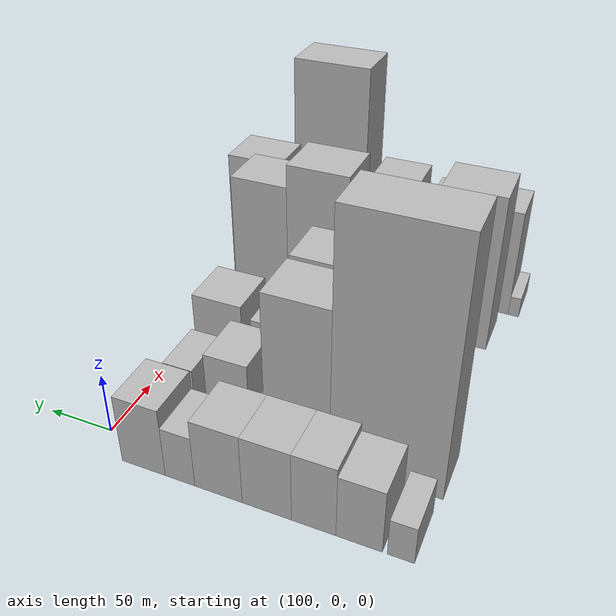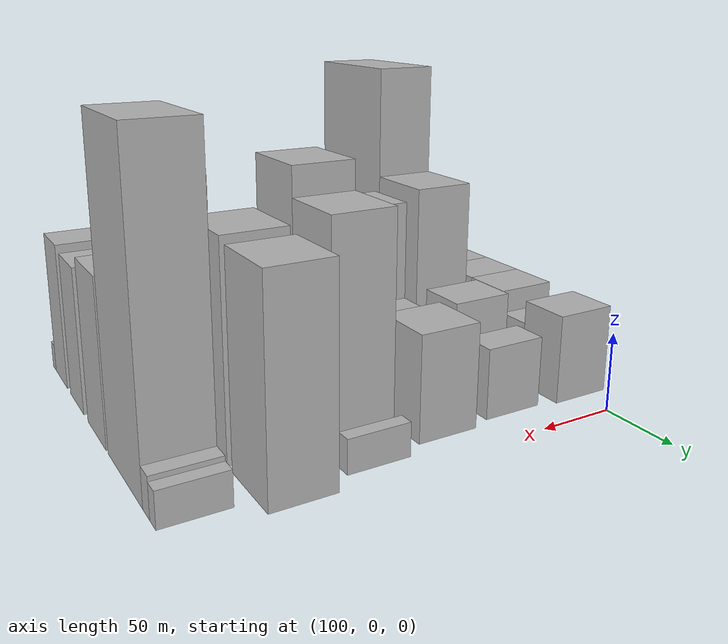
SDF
<sdf version="1.6">
 <world name="default">
  <model name="building_20">
   <static>1</static>
   <pose>100.0000 -215.5407 0 0.000000 0.000000 0.000000</pose>
   <link name="link">
    <pose>0 0 15.00 0 0 0</pose>
    <collision name="collision"><geometry><box><size>40.0000 16.7380 30.0000</size></box></geometry></collision>
    <visual name="visual">
     <cast_shadows>0</cast_shadows>
     <geometry><box><size>40.0000 16.7380 30.0000</size></box></geometry>
     <material>
      <script>
       <uri>model://HANNAS_wall/materials/scripts</uri>
       <uri>model://HANNAS_wall/materials/textures</uri>
       <name>vrc/HANNAS_wall</name>
      </script>
     </material>
    </visual>
   </link>
  </model>
  <model name="building_21">
   <static>1</static>
   <pose>100.0000 -189.4003 0 0.000000 0.000000 0.000000</pose>
   <link name="link">
    <pose>0 0 25.50 0 0 0</pose>
    <collision name="collision"><geometry><box><size>40.0000 29.5428 51.0000</size></box></geometry></collision>
    <visual name="visual">
     <cast_shadows>0</cast_shadows>
     <geometry><box><size>40.0000 29.5428 51.0000</size></box></geometry>
     <material>
      <script>
       <uri>model://HANNAS_wall/materials/scripts</uri>
       <uri>model://HANNAS_wall/materials/textures</uri>
       <name>vrc/HANNAS_wall</name>
      </script>
     </material>
    </visual>
   </link>
  </model>
  <model name="building_22">
   <static>1</static>
   <pose>100.0000 -159.9750 0 0.000000 0.000000 0.000000</pose>
   <link name="link">
    <pose>0 0 28.50 0 0 0</pose>
    <collision name="collision"><geometry><box><size>40.0000 29.3079 57.0000</size></box></geometry></collision>
    <visual name="visual">
     <cast_shadows>0</cast_shadows>
     <geometry><box><size>40.0000 29.3079 57.0000</size></box></geometry>
     <material>
      <script>
       <uri>model://HANNAS_wall/materials/scripts</uri>
       <uri>model://HANNAS_wall/materials/textures</uri>
       <name>vrc/HANNAS_wall</name>
      </script>
     </material>
    </visual>
   </link>
  </model>
  <model name="building_23">
   <static>1</static>
   <pose>100.0000 -128.4141 0 0.000000 0.000000 0.000000</pose>
   <link name="link">
    <pose>0 0 28.50 0 0 0</pose>
    <collision name="collision"><geometry><box><size>40.0000 33.8138 57.0000</size></box></geometry></collision>
    <visual name="visual">
     <cast_shadows>0</cast_shadows>
     <geometry><box><size>40.0000 33.8138 57.0000</size></box></geometry>
     <material>
      <script>
       <uri>model://HANNAS_wall/materials/scripts</uri>
       <uri>model://HANNAS_wall/materials/textures</uri>
       <name>vrc/HANNAS_wall</name>
      </script>
     </material>
    </visual>
   </link>
  </model>
  <model name="building_24">
   <static>1</static>
   <pose>100.0000 -94.5212 0 0.000000 0.000000 0.000000</pose>
   <link name="link">
    <pose>0 0 28.50 0 0 0</pose>
    <collision name="collision"><geometry><box><size>40.0000 33.9721 57.0000</size></box></geometry></collision>
    <visual name="visual">
     <cast_shadows>0</cast_shadows>
     <geometry><box><size>40.0000 33.9721 57.0000</size></box></geometry>
     <material>
      <script>
       <uri>model://HANNAS_wall/materials/scripts</uri>
       <uri>model://HANNAS_wall/materials/textures</uri>
       <name>vrc/HANNAS_wall</name>
      </script>
     </material>
    </visual>
   </link>
  </model>
  <model name="building_25">
   <static>1</static>
   <pose>100.0000 -66.5275 0 0.000000 0.000000 0.000000</pose>
   <link name="link">
    <pose>0 0 21.00 0 0 0</pose>
    <collision name="collision"><geometry><box><size>40.0000 22.0153 42.0000</size></box></geometry></collision>
    <visual name="visual">
     <cast_shadows>0</cast_shadows>
     <geometry><box><size>40.0000 22.0153 42.0000</size></box></geometry>
     <material>
      <script>
       <uri>model://HANNAS_wall/materials/scripts</uri>
       <uri>model://HANNAS_wall/materials/textures</uri>
       <name>vrc/HANNAS_wall</name>
      </script>
     </material>
    </visual>
   </link>
  </model>
  <model name="building_26">
   <static>1</static>
   <pose>100.0000 -39.0222 0 0.000000 0.000000 0.000000</pose>
   <link name="link">
    <pose>0 0 28.50 0 0 0</pose>
    <collision name="collision"><geometry><box><size>40.0000 32.9953 57.0000</size></box></geometry></collision>
    <visual name="visual">
     <cast_shadows>0</cast_shadows>
     <geometry><box><size>40.0000 32.9953 57.0000</size></box></geometry>
     <material>
      <script>
       <uri>model://HANNAS_wall/materials/scripts</uri>
       <uri>model://HANNAS_wall/materials/textures</uri>
       <name>vrc/HANNAS_wall</name>
      </script>
     </material>
    </visual>
   </link>
  </model>
  <model name="building_71">
   <static>1</static>
   <pose>152.0000 -188.2205 0 0.000000 0.000000 0.000000</pose>
   <link name="link">
    <pose>0 0 99.00 0 0 0</pose>
    <collision name="collision"><geometry><box><size>40.0000 77.4962 198.0000</size></box></geometry></collision>
    <visual name="visual">
     <cast_shadows>0</cast_shadows>
     <geometry><box><size>40.0000 77.4962 198.0000</size></box></geometry>
     <material>
      <script>
       <uri>model://HANNAS_wall/materials/scripts</uri>
       <uri>model://HANNAS_wall/materials/textures</uri>
       <name>vrc/HANNAS_wall</name>
      </script>
     </material>
    </visual>
   </link>
  </model>
  <model name="building_72">
   <static>1</static>
   <pose>152.0000 -125.9959 0 0.000000 0.000000 0.000000</pose>
   <link name="link">
    <pose>0 0 63.00 0 0 0</pose>
    <collision name="collision"><geometry><box><size>40.0000 46.9530 126.0000</size></box></geometry></collision>
    <visual name="visual">
     <cast_shadows>0</cast_shadows>
     <geometry><box><size>40.0000 46.9530 126.0000</size></box></geometry>
     <material>
      <script>
       <uri>model://HANNAS_wall/materials/scripts</uri>
       <uri>model://HANNAS_wall/materials/textures</uri>
       <name>vrc/HANNAS_wall</name>
      </script>
     </material>
    </visual>
   </link>
  </model>
  <model name="building_73">
   <static>1</static>
   <pose>152.0000 -96.8353 0 0.000000 0.000000 0.000000</pose>
   <link name="link">
    <pose>0 0 12.00 0 0 0</pose>
    <collision name="collision"><geometry><box><size>40.0000 11.3681 24.0000</size></box></geometry></collision>
    <visual name="visual">
     <cast_shadows>0</cast_shadows>
     <geometry><box><size>40.0000 11.3681 24.0000</size></box></geometry>
     <material>
      <script>
       <uri>model://HANNAS_wall/materials/scripts</uri>
       <uri>model://HANNAS_wall/materials/textures</uri>
       <name>vrc/HANNAS_wall</name>
      </script>
     </material>
    </visual>
   </link>
  </model>
  <model name="building_74">
   <static>1</static>
   <pose>152.0000 -75.0683 0 0.000000 0.000000 0.000000</pose>
   <link name="link">
    <pose>0 0 31.50 0 0 0</pose>
    <collision name="collision"><geometry><box><size>40.0000 32.1659 63.0000</size></box></geometry></collision>
    <visual name="visual">
     <cast_shadows>0</cast_shadows>
     <geometry><box><size>40.0000 32.1659 63.0000</size></box></geometry>
     <material>
      <script>
       <uri>model://HANNAS_wall/materials/scripts</uri>
       <uri>model://HANNAS_wall/materials/textures</uri>
       <name>vrc/HANNAS_wall</name>
      </script>
     </material>
    </visual>
   </link>
  </model>
  <model name="building_75">
   <static>1</static>
   <pose>152.0000 -37.6213 0 0.000000 0.000000 0.000000</pose>
   <link name="link">
    <pose>0 0 22.50 0 0 0</pose>
    <collision name="collision"><geometry><box><size>40.0000 22.7282 45.0000</size></box></geometry></collision>
    <visual name="visual">
     <cast_shadows>0</cast_shadows>
     <geometry><box><size>40.0000 22.7282 45.0000</size></box></geometry>
     <material>
      <script>
       <uri>model://HANNAS_wall/materials/scripts</uri>
       <uri>model://HANNAS_wall/materials/textures</uri>
       <name>vrc/HANNAS_wall</name>
      </script>
     </material>
    </visual>
   </link>
  </model>
  <model name="building_115">
   <static>1</static>
   <pose>204.0000 -206.0007 0 0.000000 0.000000 0.000000</pose>
   <link name="link">
    <pose>0 0 24.00 0 0 0</pose>
    <collision name="collision"><geometry><box><size>40.0000 26.1669 48.0000</size></box></geometry></collision>
    <visual name="visual">
     <cast_shadows>0</cast_shadows>
     <geometry><box><size>40.0000 26.1669 48.0000</size></box></geometry>
     <material>
      <script>
       <uri>model://HANNAS_wall/materials/scripts</uri>
       <uri>model://HANNAS_wall/materials/textures</uri>
       <name>vrc/HANNAS_wall</name>
      </script>
     </material>
    </visual>
   </link>
  </model>
  <model name="building_116">
   <static>1</static>
   <pose>204.0000 -176.4094 0 0.000000 0.000000 0.000000</pose>
   <link name="link">
    <pose>0 0 46.50 0 0 0</pose>
    <collision name="collision"><geometry><box><size>40.0000 33.0156 93.0000</size></box></geometry></collision>
    <visual name="visual">
     <cast_shadows>0</cast_shadows>
     <geometry><box><size>40.0000 33.0156 93.0000</size></box></geometry>
     <material>
      <script>
       <uri>model://HANNAS_wall/materials/scripts</uri>
       <uri>model://HANNAS_wall/materials/textures</uri>
       <name>vrc/HANNAS_wall</name>
      </script>
     </material>
    </visual>
   </link>
  </model>
  <model name="building_117">
   <static>1</static>
   <pose>204.0000 -147.8134 0 0.000000 0.000000 0.000000</pose>
   <link name="link">
    <pose>0 0 22.50 0 0 0</pose>
    <collision name="collision"><geometry><box><size>40.0000 24.1765 45.0000</size></box></geometry></collision>
    <visual name="visual">
     <cast_shadows>0</cast_shadows>
     <geometry><box><size>40.0000 24.1765 45.0000</size></box></geometry>
     <material>
      <script>
       <uri>model://HANNAS_wall/materials/scripts</uri>
       <uri>model://HANNAS_wall/materials/textures</uri>
       <name>vrc/HANNAS_wall</name>
      </script>
     </material>
    </visual>
   </link>
  </model>
  <model name="building_118">
   <static>1</static>
   <pose>204.0000 -117.0614 0 0.000000 0.000000 0.000000</pose>
   <link name="link">
    <pose>0 0 60.00 0 0 0</pose>
    <collision name="collision"><geometry><box><size>40.0000 37.3274 120.0000</size></box></geometry></collision>
    <visual name="visual">
     <cast_shadows>0</cast_shadows>
     <geometry><box><size>40.0000 37.3274 120.0000</size></box></geometry>
     <material>
      <script>
       <uri>model://HANNAS_wall/materials/scripts</uri>
       <uri>model://HANNAS_wall/materials/textures</uri>
       <name>vrc/HANNAS_wall</name>
      </script>
     </material>
    </visual>
   </link>
  </model>
  <model name="building_119">
   <static>1</static>
   <pose>204.0000 -83.0047 0 0.000000 0.000000 0.000000</pose>
   <link name="link">
    <pose>0 0 28.50 0 0 0</pose>
    <collision name="collision"><geometry><box><size>40.0000 30.7859 57.0000</size></box></geometry></collision>
    <visual name="visual">
     <cast_shadows>0</cast_shadows>
     <geometry><box><size>40.0000 30.7859 57.0000</size></box></geometry>
     <material>
      <script>
       <uri>model://HANNAS_wall/materials/scripts</uri>
       <uri>model://HANNAS_wall/materials/textures</uri>
       <name>vrc/HANNAS_wall</name>
      </script>
     </material>
    </visual>
   </link>
  </model>
  <model name="building_120">
   <static>1</static>
   <pose>204.0000 -63.9904 0 0.000000 0.000000 0.000000</pose>
   <link name="link">
    <pose>0 0 9.00 0 0 0</pose>
    <collision name="collision"><geometry><box><size>40.0000 7.2428 18.0000</size></box></geometry></collision>
    <visual name="visual">
     <cast_shadows>0</cast_shadows>
     <geometry><box><size>40.0000 7.2428 18.0000</size></box></geometry>
     <material>
      <script>
       <uri>model://HANNAS_wall/materials/scripts</uri>
       <uri>model://HANNAS_wall/materials/textures</uri>
       <name>vrc/HANNAS_wall</name>
      </script>
     </material>
    </visual>
   </link>
  </model>
  <model name="building_121">
   <static>1</static>
   <pose>204.0000 -40.7648 0 0.000000 0.000000 0.000000</pose>
   <link name="link">
    <pose>0 0 33.00 0 0 0</pose>
    <collision name="collision"><geometry><box><size>40.0000 39.2086 66.0000</size></box></geometry></collision>
    <visual name="visual">
     <cast_shadows>0</cast_shadows>
     <geometry><box><size>40.0000 39.2086 66.0000</size></box></geometry>
     <material>
      <script>
       <uri>model://HANNAS_wall/materials/scripts</uri>
       <uri>model://HANNAS_wall/materials/textures</uri>
       <name>vrc/HANNAS_wall</name>
      </script>
     </material>
    </visual>
   </link>
  </model>
  <model name="building_165">
   <static>1</static>
   <pose>256.0000 -171.2919 0 0.000000 0.000000 0.000000</pose>
   <link name="link">
    <pose>0 0 18.00 0 0 0</pose>
    <collision name="collision"><geometry><box><size>40.0000 18.2562 36.0000</size></box></geometry></collision>
    <visual name="visual">
     <cast_shadows>0</cast_shadows>
     <geometry><box><size>40.0000 18.2562 36.0000</size></box></geometry>
     <material>
      <script>
       <uri>model://HANNAS_wall/materials/scripts</uri>
       <uri>model://HANNAS_wall/materials/textures</uri>
       <name>vrc/HANNAS_wall</name>
      </script>
     </material>
    </visual>
   </link>
  </model>
  <model name="building_166">
   <static>1</static>
   <pose>256.0000 -141.3103 0 0.000000 0.000000 0.000000</pose>
   <link name="link">
    <pose>0 0 40.50 0 0 0</pose>
    <collision name="collision"><geometry><box><size>40.0000 41.7068 81.0000</size></box></geometry></collision>
    <visual name="visual">
     <cast_shadows>0</cast_shadows>
     <geometry><box><size>40.0000 41.7068 81.0000</size></box></geometry>
     <material>
      <script>
       <uri>model://HANNAS_wall/materials/scripts</uri>
       <uri>model://HANNAS_wall/materials/textures</uri>
       <name>vrc/HANNAS_wall</name>
      </script>
     </material>
    </visual>
   </link>
  </model>
  <model name="building_167">
   <static>1</static>
   <pose>256.0000 -96.9217 0 0.000000 0.000000 0.000000</pose>
   <link name="link">
    <pose>0 0 78.00 0 0 0</pose>
    <collision name="collision"><geometry><box><size>40.0000 47.0704 156.0000</size></box></geometry></collision>
    <visual name="visual">
     <cast_shadows>0</cast_shadows>
     <geometry><box><size>40.0000 47.0704 156.0000</size></box></geometry>
     <material>
      <script>
       <uri>model://HANNAS_wall/materials/scripts</uri>
       <uri>model://HANNAS_wall/materials/textures</uri>
       <name>vrc/HANNAS_wall</name>
      </script>
     </material>
    </visual>
   </link>
  </model>
  <model name="building_168">
   <static>1</static>
   <pose>256.0000 -51.4227 0 0.000000 0.000000 0.000000</pose>
   <link name="link">
    <pose>0 0 69.00 0 0 0</pose>
    <collision name="collision"><geometry><box><size>40.0000 43.9277 138.0000</size></box></geometry></collision>
    <visual name="visual">
     <cast_shadows>0</cast_shadows>
     <geometry><box><size>40.0000 43.9277 138.0000</size></box></geometry>
     <material>
      <script>
       <uri>model://HANNAS_wall/materials/scripts</uri>
       <uri>model://HANNAS_wall/materials/textures</uri>
       <name>vrc/HANNAS_wall</name>
      </script>
     </material>
    </visual>
   </link>
  </model>
  <model name="building_169">
   <static>1</static>
   <pose>256.0000 -16.7953 0 0.000000 0.000000 0.000000</pose>
   <link name="link">
    <pose>0 0 10.50 0 0 0</pose>
    <collision name="collision"><geometry><box><size>40.0000 9.3270 21.0000</size></box></geometry></collision>
    <visual name="visual">
     <cast_shadows>0</cast_shadows>
     <geometry><box><size>40.0000 9.3270 21.0000</size></box></geometry>
     <material>
      <script>
       <uri>model://HANNAS_wall/materials/scripts</uri>
       <uri>model://HANNAS_wall/materials/textures</uri>
       <name>vrc/HANNAS_wall</name>
      </script>
     </material>
    </visual>
   </link>
  </model>
  <model name="building_213">
   <static>1</static>
   <pose>308.0000 -194.7423 0 0.000000 0.000000 0.000000</pose>
   <link name="link">
    <pose>0 0 67.50 0 0 0</pose>
    <collision name="collision"><geometry><box><size>40.0000 48.1015 135.0000</size></box></geometry></collision>
    <visual name="visual">
     <cast_shadows>0</cast_shadows>
     <geometry><box><size>40.0000 48.1015 135.0000</size></box></geometry>
     <material>
      <script>
       <uri>model://HANNAS_wall/materials/scripts</uri>
       <uri>model://HANNAS_wall/materials/textures</uri>
       <name>vrc/HANNAS_wall</name>
      </script>
     </material>
    </visual>
   </link>
  </model>
  <model name="building_214">
   <static>1</static>
   <pose>308.0000 -160.9712 0 0.000000 0.000000 0.000000</pose>
   <link name="link">
    <pose>0 0 9.00 0 0 0</pose>
    <collision name="collision"><geometry><box><size>40.0000 7.4407 18.0000</size></box></geometry></collision>
    <visual name="visual">
     <cast_shadows>0</cast_shadows>
     <geometry><box><size>40.0000 7.4407 18.0000</size></box></geometry>
     <material>
      <script>
       <uri>model://HANNAS_wall/materials/scripts</uri>
       <uri>model://HANNAS_wall/materials/textures</uri>
       <name>vrc/HANNAS_wall</name>
      </script>
     </material>
    </visual>
   </link>
  </model>
  <model name="building_215">
   <static>1</static>
   <pose>308.0000 -143.7498 0 0.000000 0.000000 0.000000</pose>
   <link name="link">
    <pose>0 0 13.50 0 0 0</pose>
    <collision name="collision"><geometry><box><size>40.0000 11.0022 27.0000</size></box></geometry></collision>
    <visual name="visual">
     <cast_shadows>0</cast_shadows>
     <geometry><box><size>40.0000 11.0022 27.0000</size></box></geometry>
     <material>
      <script>
       <uri>model://HANNAS_wall/materials/scripts</uri>
       <uri>model://HANNAS_wall/materials/textures</uri>
       <name>vrc/HANNAS_wall</name>
      </script>
     </material>
    </visual>
   </link>
  </model>
  <model name="building_216">
   <static>1</static>
   <pose>308.0000 -123.1769 0 0.000000 0.000000 0.000000</pose>
   <link name="link">
    <pose>0 0 25.50 0 0 0</pose>
    <collision name="collision"><geometry><box><size>40.0000 30.1436 51.0000</size></box></geometry></collision>
    <visual name="visual">
     <cast_shadows>0</cast_shadows>
     <geometry><box><size>40.0000 30.1436 51.0000</size></box></geometry>
     <material>
      <script>
       <uri>model://HANNAS_wall/materials/scripts</uri>
       <uri>model://HANNAS_wall/materials/textures</uri>
       <name>vrc/HANNAS_wall</name>
      </script>
     </material>
    </visual>
   </link>
  </model>
  <model name="building_217">
   <static>1</static>
   <pose>308.0000 -74.8272 0 0.000000 0.000000 0.000000</pose>
   <link name="link">
    <pose>0 0 64.50 0 0 0</pose>
    <collision name="collision"><geometry><box><size>40.0000 46.5557 129.0000</size></box></geometry></collision>
    <visual name="visual">
     <cast_shadows>0</cast_shadows>
     <geometry><box><size>40.0000 46.5557 129.0000</size></box></geometry>
     <material>
      <script>
       <uri>model://HANNAS_wall/materials/scripts</uri>
       <uri>model://HANNAS_wall/materials/textures</uri>
       <name>vrc/HANNAS_wall</name>
      </script>
     </material>
    </visual>
   </link>
  </model>
  <model name="building_218">
   <static>1</static>
   <pose>308.0000 -22.1289 0 0.000000 0.000000 0.000000</pose>
   <link name="link">
    <pose>0 0 63.00 0 0 0</pose>
    <collision name="collision"><geometry><box><size>40.0000 44.8409 126.0000</size></box></geometry></collision>
    <visual name="visual">
     <cast_shadows>0</cast_shadows>
     <geometry><box><size>40.0000 44.8409 126.0000</size></box></geometry>
     <material>
      <script>
       <uri>model://HANNAS_wall/materials/scripts</uri>
       <uri>model://HANNAS_wall/materials/textures</uri>
       <name>vrc/HANNAS_wall</name>
      </script>
     </material>
    </visual>
   </link>
  </model>
  <model name="building_265">
   <static>1</static>
   <pose>360.0000 -229.9544 0 0.000000 0.000000 0.000000</pose>
   <link name="link">
    <pose>0 0 9.00 0 0 0</pose>
    <collision name="collision"><geometry><box><size>40.0000 8.5215 18.0000</size></box></geometry></collision>
    <visual name="visual">
     <cast_shadows>0</cast_shadows>
     <geometry><box><size>40.0000 8.5215 18.0000</size></box></geometry>
     <material>
      <script>
       <uri>model://HANNAS_wall/materials/scripts</uri>
       <uri>model://HANNAS_wall/materials/textures</uri>
       <name>vrc/HANNAS_wall</name>
      </script>
     </material>
    </visual>
   </link>
  </model>
  <model name="building_266">
   <static>1</static>
   <pose>360.0000 -209.5274 0 0.000000 0.000000 0.000000</pose>
   <link name="link">
    <pose>0 0 48.00 0 0 0</pose>
    <collision name="collision"><geometry><box><size>40.0000 32.3326 96.0000</size></box></geometry></collision>
    <visual name="visual">
     <cast_shadows>0</cast_shadows>
     <geometry><box><size>40.0000 32.3326 96.0000</size></box></geometry>
     <material>
      <script>
       <uri>model://HANNAS_wall/materials/scripts</uri>
       <uri>model://HANNAS_wall/materials/textures</uri>
       <name>vrc/HANNAS_wall</name>
      </script>
     </material>
    </visual>
   </link>
  </model>
  <model name="building_267">
   <static>1</static>
   <pose>360.0000 -167.5657 0 0.000000 0.000000 0.000000</pose>
   <link name="link">
    <pose>0 0 46.50 0 0 0</pose>
    <collision name="collision"><geometry><box><size>40.0000 33.5908 93.0000</size></box></geometry></collision>
    <visual name="visual">
     <cast_shadows>0</cast_shadows>
     <geometry><box><size>40.0000 33.5908 93.0000</size></box></geometry>
     <material>
      <script>
       <uri>model://HANNAS_wall/materials/scripts</uri>
       <uri>model://HANNAS_wall/materials/textures</uri>
       <name>vrc/HANNAS_wall</name>
      </script>
     </material>
    </visual>
   </link>
  </model>
  <model name="building_268">
   <static>1</static>
   <pose>360.0000 -120.7477 0 0.000000 0.000000 0.000000</pose>
   <link name="link">
    <pose>0 0 51.00 0 0 0</pose>
    <collision name="collision"><geometry><box><size>40.0000 40.0453 102.0000</size></box></geometry></collision>
    <visual name="visual">
     <cast_shadows>0</cast_shadows>
     <geometry><box><size>40.0000 40.0453 102.0000</size></box></geometry>
     <material>
      <script>
       <uri>model://HANNAS_wall/materials/scripts</uri>
       <uri>model://HANNAS_wall/materials/textures</uri>
       <name>vrc/HANNAS_wall</name>
      </script>
     </material>
    </visual>
   </link>
  </model>
  <model name="building_269">
   <static>1</static>
   <pose>360.0000 -65.3397 0 0.000000 0.000000 0.000000</pose>
   <link name="link">
    <pose>0 0 96.00 0 0 0</pose>
    <collision name="collision"><geometry><box><size>40.0000 62.7706 192.0000</size></box></geometry></collision>
    <visual name="visual">
     <cast_shadows>0</cast_shadows>
     <geometry><box><size>40.0000 62.7706 192.0000</size></box></geometry>
     <material>
      <script>
       <uri>model://HANNAS_wall/materials/scripts</uri>
       <uri>model://HANNAS_wall/materials/textures</uri>
       <name>vrc/HANNAS_wall</name>
      </script>
     </material>
    </visual>
   </link>
  </model>
  <model name="building_270">
   <static>1</static>
   <pose>360.0000 -28.4173 0 0.000000 0.000000 0.000000</pose>
   <link name="link">
    <pose>0 0 12.00 0 0 0</pose>
    <collision name="collision"><geometry><box><size>40.0000 11.0743 24.0000</size></box></geometry></collision>
    <visual name="visual">
     <cast_shadows>0</cast_shadows>
     <geometry><box><size>40.0000 11.0743 24.0000</size></box></geometry>
     <material>
      <script>
       <uri>model://HANNAS_wall/materials/scripts</uri>
       <uri>model://HANNAS_wall/materials/textures</uri>
       <name>vrc/HANNAS_wall</name>
      </script>
     </material>
    </visual>
   </link>
  </model>
  <model name="building_271">
   <static>1</static>
   <pose>360.0000 -18.2339 0 0.000000 0.000000 0.000000</pose>
   <link name="link">
    <pose>0 0 10.50 0 0 0</pose>
    <collision name="collision"><geometry><box><size>40.0000 9.2923 21.0000</size></box></geometry></collision>
    <visual name="visual">
     <cast_shadows>0</cast_shadows>
     <geometry><box><size>40.0000 9.2923 21.0000</size></box></geometry>
     <material>
      <script>
       <uri>model://HANNAS_wall/materials/scripts</uri>
       <uri>model://HANNAS_wall/materials/textures</uri>
       <name>vrc/HANNAS_wall</name>
      </script>
     </material>
    </visual>
   </link>
  </model>
 </world>
</sdf>
